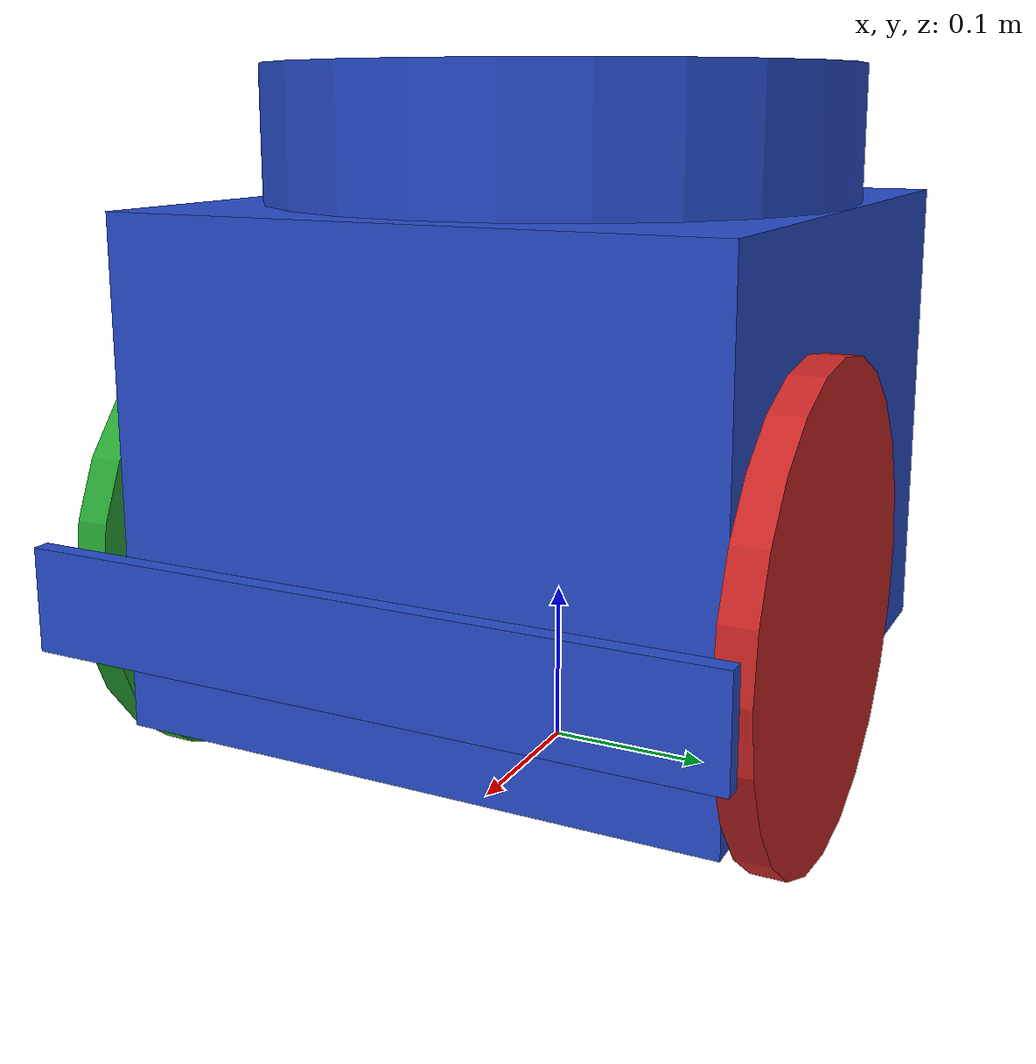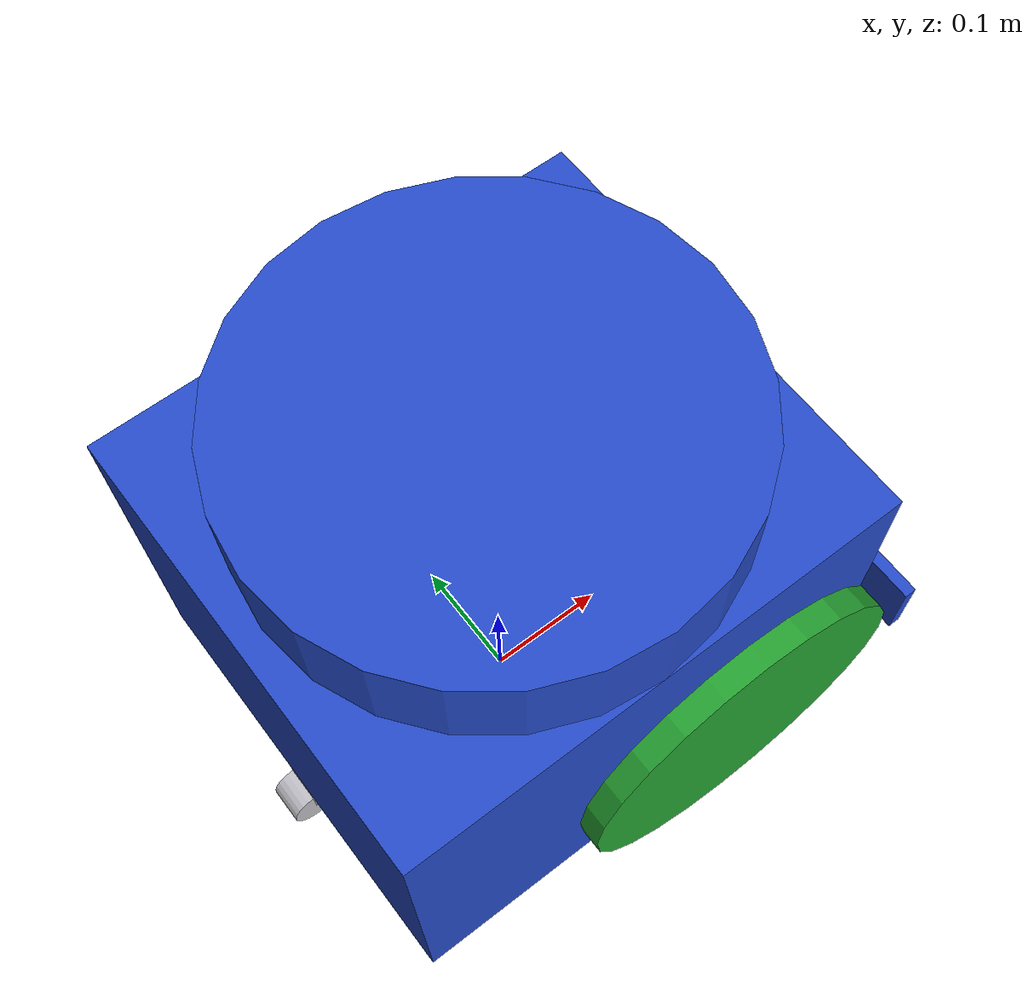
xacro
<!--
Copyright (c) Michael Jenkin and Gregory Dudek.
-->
<?xml version="1.0"?>

<robot name="$(arg name)" xmlns:xacro="http://www.ros.org/wiki/xacro">

  <!-- Define the robot -->
  <xacro:property name="robot_base_width" value="0.36" />
  <xacro:property name="robot_base_length" value="0.4" />
  <xacro:property name="robot_base_height" value="0.3" />
  <xacro:property name="robot_base_mass" value="4.5" />
  <xacro:property name="robot_sonar_radius" value="0.18" />
  <xacro:property name="robot_sonar_height" value="0.08" />
  <xacro:property name="robot_wheel_zoffset" value="-0.06" />
  <xacro:property name="robot_wheel_xoffset" value="0.08" />
  <xacro:property name="robot_wheel_radius" value="0.14" />
  <xacro:property name="robot_wheel_width" value="0.02" />
  <xacro:property name="robot_caster_link_height" value="0.03" />
  <xacro:property name="robot_caster_link_width" value="0.03" />
  <xacro:property name="robot_caster_link_length" value="0.05" />
  <xacro:property name="robot_caster_link_offset" value="-0.025" />
  <xacro:property name="robot_caster_joint_offset" value="-0.15" />
  <xacro:property name="robot_caster_wheel_radius" value="0.02" />
  <xacro:property name="bumper_offset_length" value="0.04" />
  <xacro:property name="bumper_offset_width" value="0.02" />
  <xacro:property name="bumper_offset_height" value="0.02" />
  <xacro:property name="bumper_length" value="0.01" />
  <xacro:property name="bumper_width" value="0.4" />
  <xacro:property name="bumper_height" value="0.06" />

  <!-- Import colors defined externally -->
  <xacro:include filename="$(find cpmr_ch4)/colors.xacro" />

  <xacro:macro name="I_cylinder" params="m r h">
    <inertial>
      <mass value="${m}" />
      <inertia  ixx="${m*(3*r*r+h*h)/12}" iyy="${m*(3*r*r+h*h)/12}" izz="${m*r*r/2}"
              ixy = "0" ixz = "0" iyz = "0" />
    </inertial>
  </xacro:macro>
  <xacro:macro name="I_cuboid" params="m x y z">
    <inertial>
      <mass value="${m}" />
      <inertia  ixx="${m*(y*y+z*z)/12}" iyy="${m*(x*x+z*z)/12}" izz="${m*(x*x+z*z)/12}"
                ixy = "0" ixz = "0" iyz = "0" />
    </inertial>
  </xacro:macro>

  <!-- robot footprint -->
  <link name="base_footprint">
  </link>

  <!-- Base -->
  <gazebo reference="base_link">
    <material>Gazebo/Blue</material>
  </gazebo>
  <link name="base_link">
    <visual>
      <geometry>
        <box size="${robot_base_length} ${robot_base_width} ${robot_base_height}" />
      </geometry>
      <material name="blue"/>
    </visual>
    <collision>
      <geometry>
        <box size="${robot_base_length} ${robot_base_width} ${robot_base_height}" />
      </geometry>
    </collision>
    <xacro:I_cuboid m="8.4" x="${robot_base_length}" y="${robot_base_width}" z="${robot_base_height}" />
  </link>

  <!-- Sonar unit -->
  <gazebo reference="sonar_link">
    <material>Gazebo/Blue</material>
  </gazebo>
  <link name="sonar_link">
    <visual>
      <geometry>
        <cylinder length="${robot_sonar_height}" radius="${robot_sonar_radius}" />
      </geometry>
      <material name="blue"/>
    </visual>
    <collision>
      <geometry>
        <cylinder length="${robot_sonar_height}" radius="${robot_sonar_radius}" />
      </geometry>
    </collision>
    <xacro:I_cylinder m="8.4" r="${robot_sonar_radius}" h="${robot_sonar_height}" />
  </link>

  <joint name="base_joint" type="fixed">
    <origin xyz="0.0 0.0 ${robot_wheel_radius-robot_wheel_zoffset}" rpy="0.0 0.0 0.0" />
    <parent link="base_footprint" />
    <child link="base_link" />
    <axis xyz="0 0 1" />
  </joint>

  <joint name="sonar_joint" type="fixed">
    <origin xyz="0.0 0.0 ${robot_base_height/2+robot_sonar_height/2}" rpy="0.0 0.0 0.0" />
    <parent link="base_link" />
    <child link="sonar_link" />
    <axis xyz="0 0 1" />
  </joint>

  <!-- Left wheel -->
  <gazebo reference="left_wheel_link">
    <material>Gazebo/Red</material>
  </gazebo>
  <link name="left_wheel_link">
    <visual>
      <geometry>
        <cylinder length="${robot_wheel_width}" radius="${robot_wheel_radius}" />
      </geometry>
      <material name="red" />
    </visual>
    <collision>
      <geometry>
        <cylinder length="${robot_wheel_width}" radius="${robot_wheel_radius}" />
      </geometry>
    </collision>
    <xacro:I_cylinder m="0.1" r="${robot_wheel_radius}" h="${robot_wheel_width}" />
  </link>

  <joint name="left_wheel_joint" type="continuous">
    <axis xyz="0 0 1" />
    <parent link="base_link" />
    <child link="left_wheel_link" />
    <origin rpy="-1.5708 0 0" xyz="${robot_wheel_xoffset} ${robot_base_width/2+robot_wheel_width/2} ${robot_wheel_zoffset}" />
  </joint>

  <!-- Right wheel -->
  <gazebo reference="right_wheel_link">
    <material>Gazebo/Green</material>
  </gazebo>
  <link name="right_wheel_link">
    <visual>
      <geometry>
        <cylinder length="${robot_wheel_width}" radius="${robot_wheel_radius}" />
      </geometry>
      <material name="green" />
    </visual>
    <collision>
      <geometry>
        <cylinder length="${robot_wheel_width}" radius="${robot_wheel_radius}" />
      </geometry>
    </collision>
    <xacro:I_cylinder m="0.1" r="${robot_wheel_radius}" h="${robot_wheel_width}" />
  </link>

  <joint name="right_wheel_joint" type="continuous">
    <axis xyz="0 0 1" />
    <parent link="base_link" />
    <child link="right_wheel_link" />
    <origin rpy="-1.5708 0 0" xyz="${robot_wheel_xoffset} ${-robot_base_width/2-robot_wheel_width/2} ${robot_wheel_zoffset}" />
  </joint>

  <!-- Caster 'wheel' structure -->
  <gazebo reference="caster_link">
    <material>Gazebo/Silver</material>
  </gazebo>

  <link name="caster_link">
    <visual>
      <origin xyz="${robot_caster_link_length/2} 0 0" rpy="0 0 0" />
      <geometry>
        <box size="${robot_caster_link_length} ${robot_caster_link_width} ${robot_caster_link_height}" />
      </geometry>
      <material name="silver"/>
    </visual>
    <collision>
      <origin xyz="${robot_caster_link_length/2} 0 0" rpy="0 0 0" />
      <geometry>
        <box size="${robot_caster_link_length} ${robot_caster_link_width} ${robot_caster_link_height}" />
      </geometry>
    </collision>
    <xacro:I_cuboid m="0.1" x="${robot_caster_link_length}" y="${robot_caster_link_width}" z="${robot_caster_link_height}" />
  </link>

  <joint name="caster_joint" type="continuous">
    <axis xyz="0 0 1" />
    <parent link="base_link" />
    <child link="caster_link" />
    <origin rpy="0 0 3.1415" xyz="${robot_caster_joint_offset} 0 ${-robot_base_height/2-robot_caster_link_height/2}" />
  </joint>

  <!-- caster wheel -->
  <gazebo reference="caster_wheel_link">
    <material>Gazebo/Silver</material>
  </gazebo>
  <link name="caster_wheel_link">
    <visual>
      <geometry>
        <cylinder length="${robot_caster_link_height}" radius="${robot_caster_wheel_radius}" />
      </geometry>
      <material name="silver" />
    </visual>
    <collision>
      <geometry>
        <cylinder length="${robot_caster_link_height}" radius="${robot_caster_wheel_radius}" />
      </geometry>
    </collision>
    <xacro:I_cylinder m="0.1" r="${robot_caster_wheel_radius}" h="${robot_caster_link_height}" />
  </link>

  <joint name="caster_wheel_joint" type="continuous">
    <axis xyz="0 0 1" />
    <child link="caster_wheel_link" />
    <parent link="caster_link" />
    <origin rpy="1.5708 0 0" xyz="${robot_caster_link_length} 0 ${-robot_caster_link_height/2}" />
  </joint>

  <!-- bumper offset -->
  <gazebo reference="bumper_offset_link">
    <material>Gazebo/Blue</material>
  </gazebo>
  <link name="bumper_offset_link">
    <visual>
      <geometry>
        <box size="${bumper_offset_length} ${bumper_offset_width} ${bumper_offset_height}" />
      </geometry>
      <material name="blue"/>
    </visual>
    <collision>
      <geometry>
        <box size="${bumper_offset_length} ${bumper_offset_width} ${bumper_offset_height}" />
      </geometry>
    </collision>
    <xacro:I_cuboid m="0.1" x="${bumper_offset_length}" y="${bumper_offset_width}" z="${bumper_offset_height}" />
  </link>

  <joint name="bumper_offset_joint" type="fixed">
    <origin xyz="${robot_base_length/2+bumper_offset_length/2} 0 ${robot_wheel_zoffset}" rpy="0.0 0.0 0.0" />
    <parent link="base_link" />
    <child link="bumper_offset_link" />
    <axis xyz="0 0 1" />
  </joint>

  <!-- bumper -->
  <gazebo reference="bumper_link">
    <material>Gazebo/Blue</material>
  </gazebo>
  <link name="bumper_link">
    <visual>
      <geometry>
        <box size="${bumper_length} ${bumper_width} ${bumper_height}" />
      </geometry>
      <material name="blue"/>
    </visual>
    <collision>
      <geometry>
        <box size="${bumper_length} ${bumper_width} ${bumper_height}" />
      </geometry>
    </collision>
    <xacro:I_cuboid m="0.1" x="${bumper_length}" y="${bumper_width}" z="${bumper_height}" />
  </link>

  <joint name="bumper_joint" type="fixed">
    <origin xyz="${bumper_offset_length/2+bumper_length/2} 0 0" rpy="0.0 0.0 0.0" />
    <parent link="bumper_offset_link" />
    <child link="bumper_link" />
    <axis xyz="0 0 1" />
  </joint>

  <gazebo>
    <plugin name="joint_state_publisher" filename="libgazebo_ros_joint_state_publisher.so">
      <update_rate>100</update_rate>
      <joint_name>caster_wheel_joint</joint_name>
      <joint_name>caster_joint</joint_name>
      <joint_name>left_wheel_joint</joint_name>
      <joint_name>right_wheel_joint</joint_name>
    </plugin>
  </gazebo>

  <gazebo reference="bumper_link">
    <sensor name="bumper_sensor" type="contact">
      <alwaysOn>true</alwaysOn>
      <update_rate>200</update_rate>
      <contact>
        <collision>base_footprint_fixed_joint_lump__bumper_link_collision_2</collision>
        <topic>bumper_contact_state</topic>
      </contact>
      <plugin name="gazebo_ros_bumper_controller" filename="libgazebo_ros_bumper.so">
        <ros><remapping>bumper_states:=robot_bumper_contact_state</remapping></ros>
        <frame_name>bumper_link</frame_name>
      </plugin>
    </sensor>
  </gazebo>

  <gazebo>
    <plugin name="differential_drive_controller" filename="libgazebo_ros_diff_drive.so">
      <update_rate>20</update_rate>
      <left_joint>left_wheel_joint</left_joint>
      <right_joint>right_wheel_joint</right_joint>
      <robotBaseFrame>base_footprint</robotBaseFrame>
      <wheel_separation>${robot_base_width+robot_wheel_width}</wheel_separation>
      <wheel_diameter>${2*robot_wheel_radius}</wheel_diameter>
      <publish_odom>true</publish_odom>
      <publish_odom_tf>true</publish_odom_tf>
      <publish_wheel_tf>true</publish_wheel_tf>
      <odometry_frame>odom</odometry_frame>
      <robot_base_frame>base_footprint</robot_base_frame>
      <command_topic>cmd_vel</command_topic>
    </plugin>
  </gazebo>
</robot>
